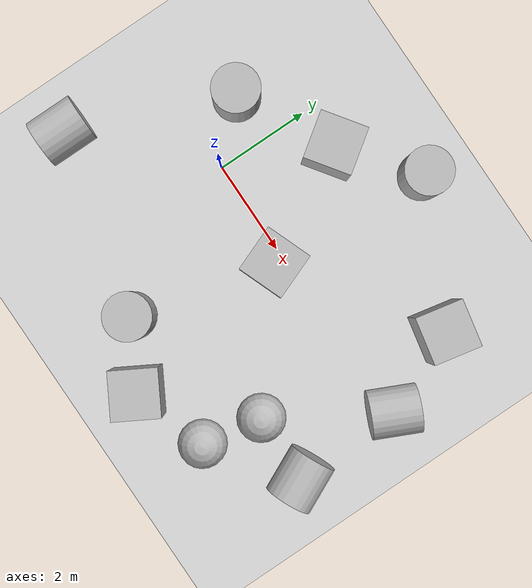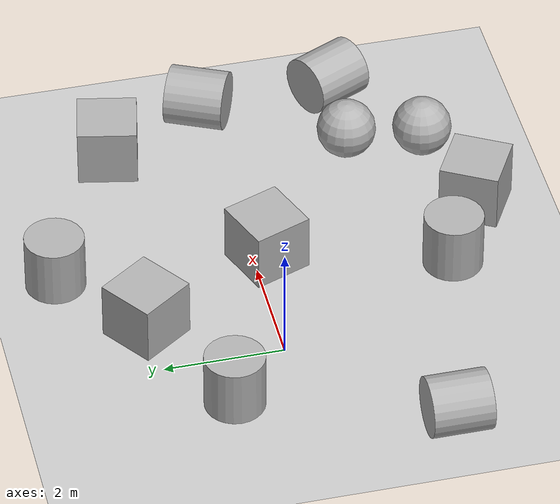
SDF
<sdf version='1.9'>
  <world name='default'>
    <plugin name='ignition::gazebo::systems::Physics' filename='ignition-gazebo-physics-system'/>
    <plugin name='ignition::gazebo::systems::SceneBroadcaster' filename='ignition-gazebo-scene-broadcaster-system'/>
    <plugin name='ignition::gazebo::systems::UserCommands' filename='ignition-gazebo-user-commands-system'/>
    <plugin name='ignition::gazebo::systems::Sensors' filename='ignition-gazebo-sensors-system'/>
    <gravity>0 0 -9.8</gravity>
    <magnetic_field>6e-06 2.3e-05 -4.2e-05</magnetic_field>
    <atmosphere type='adiabatic'/>
    <physics type='ode'>
      <max_step_size>0.001</max_step_size>
      <real_time_factor>1</real_time_factor>
      <real_time_update_rate>1000</real_time_update_rate>
    </physics>
    <scene>
      <ambient>0.4 0.4 0.4 1</ambient>
      <background>0.7 0.7 0.7 1</background>
      <shadows>true</shadows>
    </scene>
    <model name='ground_plane'>
      <static>true</static>
      <link name='link'>
        <collision name='collision'>
          <geometry>
            <plane>
              <normal>0 0 1</normal>
              <size>1 1</size>
            </plane>
          </geometry>
          <surface>
            <friction>
              <ode/>
            </friction>
            <bounce/>
            <contact/>
          </surface>
        </collision>
        <visual name='visual'>
          <geometry>
            <plane>
              <normal>0 0 1</normal>
              <size>100 100</size>
            </plane>
          </geometry>
          <material>
            <ambient>0.8 0.8 0.8 1</ambient>
            <diffuse>0.8 0.8 0.8 1</diffuse>
            <specular>0.8 0.8 0.8 1</specular>
          </material>
        </visual>
        <pose>0 0 0 0 -0 0</pose>
        <inertial>
          <pose>0 0 0 0 -0 0</pose>
          <mass>1</mass>
          <inertia>
            <ixx>1</ixx>
            <ixy>0</ixy>
            <ixz>0</ixz>
            <iyy>1</iyy>
            <iyz>0</iyz>
            <izz>1</izz>
          </inertia>
        </inertial>
        <enable_wind>false</enable_wind>
      </link>
      <pose>0 0 0 0 -0 0</pose>
      <self_collide>false</self_collide>
    </model>
    <model name='cylinder'>
      <pose>1.48447 -3.1995 0.499999 0 -0 0</pose>
      <link name='cylinder_link'>
        <inertial>
          <inertia>
            <ixx>0.14580000000000001</ixx>
            <ixy>0</ixy>
            <ixz>0</ixz>
            <iyy>0.14580000000000001</iyy>
            <iyz>0</iyz>
            <izz>0.125</izz>
          </inertia>
          <mass>1</mass>
          <pose>0 0 0 0 -0 0</pose>
        </inertial>
        <collision name='cylinder_collision'>
          <geometry>
            <cylinder>
              <radius>0.5</radius>
              <length>1</length>
            </cylinder>
          </geometry>
          <surface>
            <friction>
              <ode/>
            </friction>
            <bounce/>
            <contact/>
          </surface>
        </collision>
        <visual name='cylinder_visual'>
          <geometry>
            <cylinder>
              <radius>0.5</radius>
              <length>1</length>
            </cylinder>
          </geometry>
          <material>
            <ambient>0.3 0.3 0.3 1</ambient>
            <diffuse>0.7 0.7 0.7 1</diffuse>
            <specular>1 1 1 1</specular>
          </material>
        </visual>
        <pose>0 0 0 0 -0 0</pose>
        <enable_wind>false</enable_wind>
      </link>
      <static>true</static>
      <self_collide>false</self_collide>
    </model>
    <model name='box'>
      <pose>2.2243 -0.221224 0.5 0 -0 0.366754</pose>
      <link name='box_link'>
        <inertial>
          <inertia>
            <ixx>0.16666</ixx>
            <ixy>0</ixy>
            <ixz>0</ixz>
            <iyy>0.16666</iyy>
            <iyz>0</iyz>
            <izz>0.16666</izz>
          </inertia>
          <mass>1</mass>
          <pose>0 0 0 0 -0 0</pose>
        </inertial>
        <collision name='box_collision'>
          <geometry>
            <box>
              <size>1 1 1</size>
            </box>
          </geometry>
          <surface>
            <friction>
              <ode/>
            </friction>
            <bounce/>
            <contact/>
          </surface>
        </collision>
        <visual name='box_visual'>
          <geometry>
            <box>
              <size>1 1 1</size>
            </box>
          </geometry>
          <material>
            <ambient>0.3 0.3 0.3 1</ambient>
            <diffuse>0.7 0.7 0.7 1</diffuse>
            <specular>1 1 1 1</specular>
          </material>
        </visual>
        <pose>0 0 0 0 -0 0</pose>
        <enable_wind>false</enable_wind>
      </link>
      <static>true</static>
      <self_collide>false</self_collide>
    </model>
    <model name='cylinder_0'>
      <pose>-1.01652 1.06 0.499999 0 -0 0</pose>
      <link name='cylinder_link'>
        <inertial>
          <inertia>
            <ixx>0.14580000000000001</ixx>
            <ixy>0</ixy>
            <ixz>0</ixz>
            <iyy>0.14580000000000001</iyy>
            <iyz>0</iyz>
            <izz>0.125</izz>
          </inertia>
          <mass>1</mass>
          <pose>0 0 0 0 -0 0</pose>
        </inertial>
        <collision name='cylinder_collision'>
          <geometry>
            <cylinder>
              <radius>0.5</radius>
              <length>1</length>
            </cylinder>
          </geometry>
          <surface>
            <friction>
              <ode/>
            </friction>
            <bounce/>
            <contact/>
          </surface>
        </collision>
        <visual name='cylinder_visual'>
          <geometry>
            <cylinder>
              <radius>0.5</radius>
              <length>1</length>
            </cylinder>
          </geometry>
          <material>
            <ambient>0.3 0.3 0.3 1</ambient>
            <diffuse>0.7 0.7 0.7 1</diffuse>
            <specular>1 1 1 1</specular>
          </material>
        </visual>
        <pose>0 0 0 0 -0 0</pose>
        <enable_wind>false</enable_wind>
      </link>
      <static>true</static>
      <self_collide>false</self_collide>
    </model>
    <model name='cylinder_1'>
      <pose>-2.34544 -2.25207 0.5 1.5708 -0 0</pose>
      <link name='cylinder_link'>
        <inertial>
          <inertia>
            <ixx>0.14580000000000001</ixx>
            <ixy>0</ixy>
            <ixz>0</ixz>
            <iyy>0.14580000000000001</iyy>
            <iyz>0</iyz>
            <izz>0.125</izz>
          </inertia>
          <mass>1</mass>
          <pose>0 0 0 0 -0 0</pose>
        </inertial>
        <collision name='cylinder_collision'>
          <geometry>
            <cylinder>
              <radius>0.5</radius>
              <length>1</length>
            </cylinder>
          </geometry>
          <surface>
            <friction>
              <ode/>
            </friction>
            <bounce/>
            <contact/>
          </surface>
        </collision>
        <visual name='cylinder_visual'>
          <geometry>
            <cylinder>
              <radius>0.5</radius>
              <length>1</length>
            </cylinder>
          </geometry>
          <material>
            <ambient>0.3 0.3 0.3 1</ambient>
            <diffuse>0.7 0.7 0.7 1</diffuse>
            <specular>1 1 1 1</specular>
          </material>
        </visual>
        <pose>0 0 0 0 -0 0</pose>
        <enable_wind>false</enable_wind>
      </link>
      <static>true</static>
      <self_collide>false</self_collide>
    </model>
    <model name='box_0'>
      <pose>5.25277 1.82237 0.5 -0 -0 -0.201273</pose>
      <link name='box_link'>
        <inertial>
          <inertia>
            <ixx>0.16666</ixx>
            <ixy>0</ixy>
            <ixz>0</ixz>
            <iyy>0.16666</iyy>
            <iyz>0</iyz>
            <izz>0.16666</izz>
          </inertia>
          <mass>1</mass>
          <pose>0 0 0 0 -0 0</pose>
        </inertial>
        <collision name='box_collision'>
          <geometry>
            <box>
              <size>1 1 1</size>
            </box>
          </geometry>
          <surface>
            <friction>
              <ode/>
            </friction>
            <bounce/>
            <contact/>
          </surface>
        </collision>
        <visual name='box_visual'>
          <geometry>
            <box>
              <size>1 1 1</size>
            </box>
          </geometry>
          <material>
            <ambient>0.3 0.3 0.3 1</ambient>
            <diffuse>0.7 0.7 0.7 1</diffuse>
            <specular>1 1 1 1</specular>
          </material>
        </visual>
        <pose>0 0 0 0 -0 0</pose>
        <enable_wind>false</enable_wind>
      </link>
      <static>false</static>
      <self_collide>false</self_collide>
    </model>
    <model name='cylinder_2'>
      <pose>2.43785 3.28724 0.499999 0 -0 -0</pose>
      <link name='cylinder_link'>
        <inertial>
          <inertia>
            <ixx>0.14580000000000001</ixx>
            <ixy>0</ixy>
            <ixz>0</ixz>
            <iyy>0.14580000000000001</iyy>
            <iyz>0</iyz>
            <izz>0.125</izz>
          </inertia>
          <mass>1</mass>
          <pose>0 0 0 0 -0 0</pose>
        </inertial>
        <collision name='cylinder_collision'>
          <geometry>
            <cylinder>
              <radius>0.5</radius>
              <length>1</length>
            </cylinder>
          </geometry>
          <surface>
            <friction>
              <ode/>
            </friction>
            <bounce/>
            <contact/>
          </surface>
        </collision>
        <visual name='cylinder_visual'>
          <geometry>
            <cylinder>
              <radius>0.5</radius>
              <length>1</length>
            </cylinder>
          </geometry>
          <material>
            <ambient>0.3 0.3 0.3 1</ambient>
            <diffuse>0.7 0.7 0.7 1</diffuse>
            <specular>1 1 1 1</specular>
          </material>
        </visual>
        <pose>0 0 0 0 -0 0</pose>
        <enable_wind>false</enable_wind>
      </link>
      <static>false</static>
      <self_collide>false</self_collide>
    </model>
    <model name='box_1'>
      <pose>0.959658 2.08113 0.5 0 0 0.616165</pose>
      <link name='box_link'>
        <inertial>
          <inertia>
            <ixx>0.16666</ixx>
            <ixy>0</ixy>
            <ixz>0</ixz>
            <iyy>0.16666</iyy>
            <iyz>0</iyz>
            <izz>0.16666</izz>
          </inertia>
          <mass>1</mass>
          <pose>0 0 0 0 -0 0</pose>
        </inertial>
        <collision name='box_collision'>
          <geometry>
            <box>
              <size>1 1 1</size>
            </box>
          </geometry>
          <surface>
            <friction>
              <ode/>
            </friction>
            <bounce/>
            <contact/>
          </surface>
        </collision>
        <visual name='box_visual'>
          <geometry>
            <box>
              <size>1 1 1</size>
            </box>
          </geometry>
          <material>
            <ambient>0.3 0.3 0.3 1</ambient>
            <diffuse>0.7 0.7 0.7 1</diffuse>
            <specular>1 1 1 1</specular>
          </material>
        </visual>
        <pose>0 0 0 0 -0 0</pose>
        <enable_wind>false</enable_wind>
      </link>
      <static>false</static>
      <self_collide>false</self_collide>
    </model>
    <model name='cylinder_3'>
      <pose>6.01272 0.09332 0.5 1.5708 -0.08643 -0.43788</pose>
      <link name='cylinder_link'>
        <inertial>
          <inertia>
            <ixx>0.14580000000000001</ixx>
            <ixy>0</ixy>
            <ixz>0</ixz>
            <iyy>0.14580000000000001</iyy>
            <iyz>0</iyz>
            <izz>0.125</izz>
          </inertia>
          <mass>1</mass>
          <pose>0 0 0 0 -0 0</pose>
        </inertial>
        <collision name='cylinder_collision'>
          <geometry>
            <cylinder>
              <radius>0.5</radius>
              <length>1</length>
            </cylinder>
          </geometry>
          <surface>
            <friction>
              <ode/>
            </friction>
            <bounce/>
            <contact/>
          </surface>
        </collision>
        <visual name='cylinder_visual'>
          <geometry>
            <cylinder>
              <radius>0.5</radius>
              <length>1</length>
            </cylinder>
          </geometry>
          <material>
            <ambient>0.3 0.3 0.3 1</ambient>
            <diffuse>0.7 0.7 0.7 1</diffuse>
            <specular>1 1 1 1</specular>
          </material>
        </visual>
        <pose>0 0 0 0 -0 0</pose>
        <enable_wind>false</enable_wind>
      </link>
      <static>false</static>
      <self_collide>false</self_collide>
    </model>
    <model name='sphere'>
      <pose>4.63742 -2.16632 0.5 0 -0 0</pose>
      <link name='sphere_link'>
        <inertial>
          <inertia>
            <ixx>0.10000000000000001</ixx>
            <ixy>0</ixy>
            <ixz>0</ixz>
            <iyy>0.10000000000000001</iyy>
            <iyz>0</iyz>
            <izz>0.10000000000000001</izz>
          </inertia>
          <mass>1</mass>
          <pose>0 0 0 0 -0 0</pose>
        </inertial>
        <collision name='sphere_collision'>
          <geometry>
            <sphere>
              <radius>0.5</radius>
            </sphere>
          </geometry>
          <surface>
            <friction>
              <ode/>
            </friction>
            <bounce/>
            <contact/>
          </surface>
        </collision>
        <visual name='sphere_visual'>
          <geometry>
            <sphere>
              <radius>0.5</radius>
            </sphere>
          </geometry>
          <material>
            <ambient>0.3 0.3 0.3 1</ambient>
            <diffuse>0.7 0.7 0.7 1</diffuse>
            <specular>1 1 1 1</specular>
          </material>
        </visual>
        <pose>0 0 0 0 -0 0</pose>
        <enable_wind>false</enable_wind>
      </link>
      <static>false</static>
      <self_collide>false</self_collide>
    </model>
    <model name='box_2'>
      <pose>2.82305 -3.93555 0.5 0 0 -0.517747</pose>
      <link name='box_link'>
        <inertial>
          <inertia>
            <ixx>0.16666</ixx>
            <ixy>0</ixy>
            <ixz>0</ixz>
            <iyy>0.16666</iyy>
            <iyz>0</iyz>
            <izz>0.16666</izz>
          </inertia>
          <mass>1</mass>
          <pose>0 0 0 0 -0 0</pose>
        </inertial>
        <collision name='box_collision'>
          <geometry>
            <box>
              <size>1 1 1</size>
            </box>
          </geometry>
          <surface>
            <friction>
              <ode/>
            </friction>
            <bounce/>
            <contact/>
          </surface>
        </collision>
        <visual name='box_visual'>
          <geometry>
            <box>
              <size>1 1 1</size>
            </box>
          </geometry>
          <material>
            <ambient>0.3 0.3 0.3 1</ambient>
            <diffuse>0.7 0.7 0.7 1</diffuse>
            <specular>1 1 1 1</specular>
          </material>
        </visual>
        <pose>0 0 0 0 -0 0</pose>
        <enable_wind>false</enable_wind>
      </link>
      <static>false</static>
      <self_collide>false</self_collide>
    </model>
    <model name='cylinder_4'>
      <pose>6.07887 -2.1987 0.5 -1.5708 2e-06 0.445017</pose>
      <link name='cylinder_link'>
        <inertial>
          <inertia>
            <ixx>0.14580000000000001</ixx>
            <ixy>0</ixy>
            <ixz>0</ixz>
            <iyy>0.14580000000000001</iyy>
            <iyz>0</iyz>
            <izz>0.125</izz>
          </inertia>
          <mass>1</mass>
          <pose>0 0 0 0 -0 0</pose>
        </inertial>
        <collision name='cylinder_collision'>
          <geometry>
            <cylinder>
              <radius>0.5</radius>
              <length>1</length>
            </cylinder>
          </geometry>
          <surface>
            <friction>
              <ode/>
            </friction>
            <bounce/>
            <contact/>
          </surface>
        </collision>
        <visual name='cylinder_visual'>
          <geometry>
            <cylinder>
              <radius>0.5</radius>
              <length>1</length>
            </cylinder>
          </geometry>
          <material>
            <ambient>0.3 0.3 0.3 1</ambient>
            <diffuse>0.7 0.7 0.7 1</diffuse>
            <specular>1 1 1 1</specular>
          </material>
        </visual>
        <pose>0 0 0 0 -0 0</pose>
        <enable_wind>false</enable_wind>
      </link>
      <static>false</static>
      <self_collide>false</self_collide>
    </model>
    <model name='sphere_0'>
      <pose>4.40583 -3.42439 0.5 -0.023405 0.030256 -0.000354</pose>
      <link name='sphere_link'>
        <inertial>
          <inertia>
            <ixx>0.10000000000000001</ixx>
            <ixy>0</ixy>
            <ixz>0</ixz>
            <iyy>0.10000000000000001</iyy>
            <iyz>0</iyz>
            <izz>0.10000000000000001</izz>
          </inertia>
          <mass>1</mass>
          <pose>0 0 0 0 -0 0</pose>
        </inertial>
        <collision name='sphere_collision'>
          <geometry>
            <sphere>
              <radius>0.5</radius>
            </sphere>
          </geometry>
          <surface>
            <friction>
              <ode/>
            </friction>
            <bounce/>
            <contact/>
          </surface>
        </collision>
        <visual name='sphere_visual'>
          <geometry>
            <sphere>
              <radius>0.5</radius>
            </sphere>
          </geometry>
          <material>
            <ambient>0.3 0.3 0.3 1</ambient>
            <diffuse>0.7 0.7 0.7 1</diffuse>
            <specular>1 1 1 1</specular>
          </material>
        </visual>
        <pose>0 0 0 0 -0 0</pose>
        <enable_wind>false</enable_wind>
      </link>
      <static>false</static>
      <self_collide>false</self_collide>
    </model>
    <light name='sun' type='directional'>
      <pose>0 0 10 0 -0 0</pose>
      <cast_shadows>true</cast_shadows>
      <intensity>1</intensity>
      <direction>-0.5 0.1 -0.9</direction>
      <diffuse>0.8 0.8 0.8 1</diffuse>
      <specular>0.2 0.2 0.2 1</specular>
      <attenuation>
        <range>1000</range>
        <linear>0.01</linear>
        <constant>0.90000000000000002</constant>
        <quadratic>0.001</quadratic>
      </attenuation>
      <spot>
        <inner_angle>0</inner_angle>
        <outer_angle>0</outer_angle>
        <falloff>0</falloff>
      </spot>
    </light>
  </world>
</sdf>
